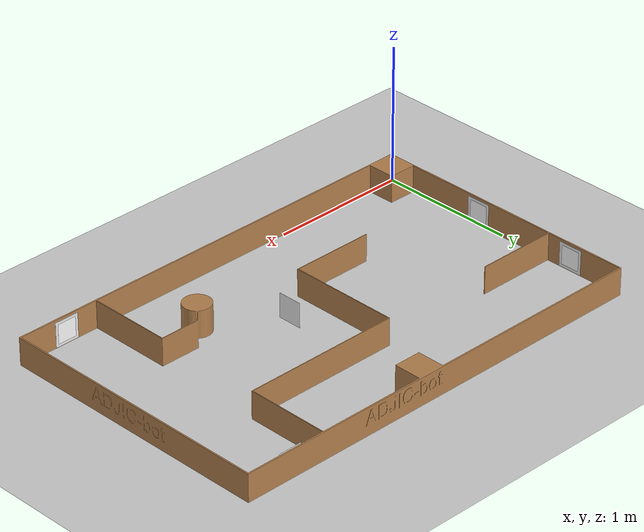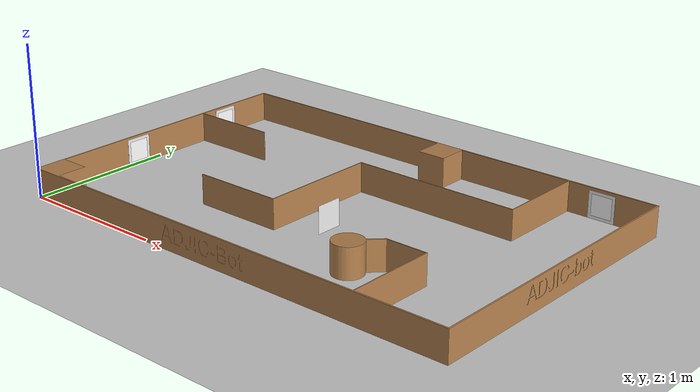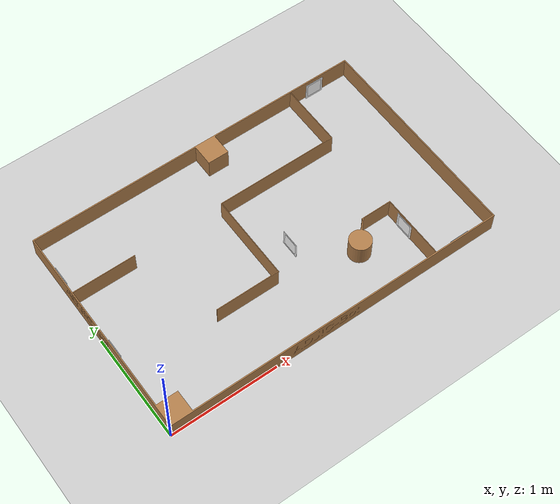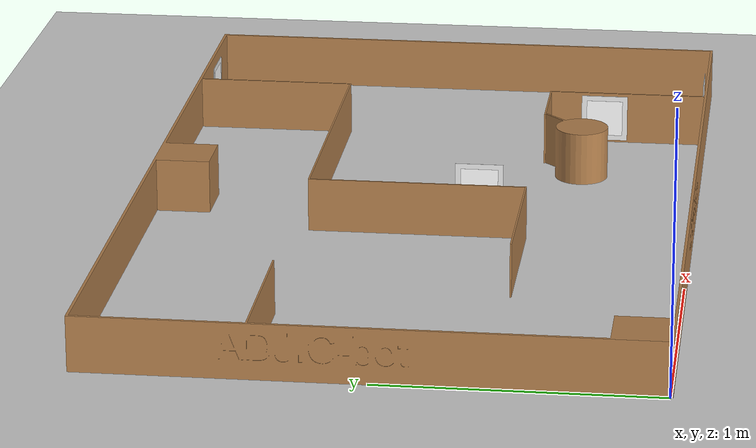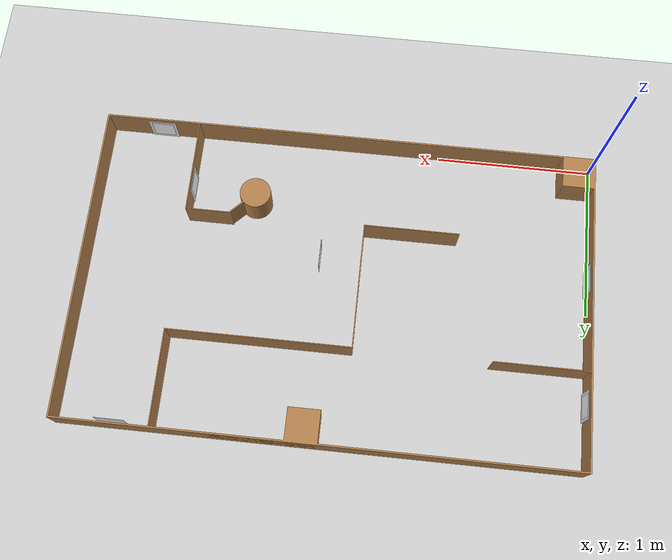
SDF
<sdf version="1.7">
 <world name="default">
  <light name="sun" type="directional">
   <pose>0 0 10 0 -0 0</pose>
   <diffuse>0.8 0.8 0.8 1</diffuse>
   <specular>0.2 0.2 0.2 1</specular>
   <attenuation>
    <range>1000</range>
    <constant>0.9</constant>
    <linear>0.01</linear>
    <quadratic>0.001</quadratic>
   </attenuation>
   <direction>-0.5 0.1 -0.9</direction>
   <spot><inner_angle>0</inner_angle><outer_angle>0</outer_angle><falloff>0</falloff></spot>
  </light>
  <model name="ground_plane">
   <static>1</static>
   <link name="link">
    <collision name="collision">
     <geometry><plane><normal>0 0 1</normal><size>100 100</size></plane></geometry>
     <surface>
      <contact><collide_bitmask>65535</collide_bitmask></contact>
      <friction><ode><mu>100</mu><mu2>50</mu2></ode></friction>
     </surface>
    </collision>
    <visual name="visual">
     <cast_shadows>0</cast_shadows>
     <geometry><plane><normal>0 0 1</normal><size>100 100</size></plane></geometry>
     <material>
      <script><uri>file://media/materials/scripts/gazebo.material</uri><name>Gazebo/Grey</name></script>
     </material>
    </visual>
   </link>
  </model>
  <gravity>0 0 -9.8</gravity>
  <magnetic_field>6e-06 2.3e-05 -4.2e-05</magnetic_field>
  <atmosphere type="adiabatic"/>
  <physics type="ode">
   <max_step_size>0.001</max_step_size>
   <real_time_factor>1</real_time_factor>
   <real_time_update_rate>1000</real_time_update_rate>
  </physics>
  <scene><ambient>0.4 0.4 0.4 1</ambient><background>0.7 0.7 0.7 1</background><shadows>1</shadows></scene>
  <include><uri>model://aruco_marker_0</uri><pose>0.02 0.8 0.1 0 0 0</pose></include>
  <include><uri>model://aruco_marker_1</uri><pose>0.02 1.6 0.1 0 0 0</pose></include>
  <include><uri>model://aruco_marker_2</uri><pose>1.716 0.8 0.1 0 0 3.14159</pose></include>
  <include><uri>model://aruco_marker_3</uri><pose>2.586 0.39 0.1 0 0 3.14159</pose></include>
  <include><uri>model://aruco_marker_4</uri><pose>2.85 0.01 0.1 0 0 1.5708</pose></include>
  <include><uri>model://aruco_marker_5</uri><pose>2.85 1.98 0.1 0 0 -1.5708</pose></include>
  <spherical_coordinates>
   <surface_model>EARTH_WGS84</surface_model>
   <latitude_deg>0</latitude_deg>
   <longitude_deg>0</longitude_deg>
   <elevation>0</elevation>
   <heading_deg>0</heading_deg>
  </spherical_coordinates>
  <model name="simulation_map">
   <static>1</static>
   <pose>0 2.0 0 0 -0 0</pose>
   <link name="walls">
    <collision name="collision">
     <geometry><mesh><uri>model://challenge6/meshes/Mapa_pista_ADJIC v4.dae</uri></mesh></geometry>
     <surface><friction><ode><mu>0.6</mu><mu2>0.6</mu2></ode></friction></surface>
    </collision>
    <visual name="visual">
     <geometry><mesh><uri>model://challenge6/meshes/Mapa_pista_ADJIC v4.dae</uri></mesh></geometry>
     <material>
      <script><uri>file://media/materials/scripts/gazebo.material</uri><name>Gazebo/Wood</name></script>
     </material>
     <cast_shadows>0</cast_shadows>
    </visual>
   </link>
  </model>
 </world>
</sdf>

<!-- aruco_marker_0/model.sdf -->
<sdf version="1.5">
    <model name='aruco_marker_1'>
    <pose>0 0 0 0 0 0</pose>
    <static>true</static>
        <link name='link'>
            <inertial>
                <pose>0 0 0 0 -0 0</pose>
                <mass>0.281</mass>
                <inertia>
                    <ixx>0.0006167</ixx>
                    <ixy>0</ixy>
                    <ixz>0</ixz>
                    <iyy>0.0006167</iyy>
                    <iyz>0</iyz>
                    <izz>0.0006167</izz>
                </inertia>
            </inertial>
            <collision name="collision">
                <geometry>
                    <box>
                        <size>0.001 0.18 0.18</size>
                    </box>
                </geometry>
                <surface>
                    <contact>
                        <ode>
                            <max_vel>1</max_vel>
                            <min_depth>0.001</min_depth>
                            <kp>1000000</kp>
                            <kd>10</kd>
                        </ode>
                    </contact>
                    <friction>
                        <ode>
                            <mu>1</mu>
                            <mu2>1</mu2>
                        </ode>
                    </friction>
                </surface>
            </collision>

            <visual name='box_visual'>
                <cast_shadows>0</cast_shadows>
                    <geometry>
                        <box>
                            <size>0.001 0.18 0.18</size>
                        </box>
                    </geometry>
                    <material>
                    <script>
                        <uri>file://media/materials/scripts/gazebo.material</uri>
                        <name>Gazebo/White</name>
                    </script>
                    <ambient>1 1 1 1</ambient>
                    <diffuse>1 1 1 1</diffuse>
                    <specular>0 0 0 1</specular>
                    <emissive>0 0 0 1</emissive>
                </material>
            </visual>

            <visual name='aruco_visual1'>
                <cast_shadows>0</cast_shadows>
                <pose>0.00065 0.0 0.0 1.5708 0.0 1.5708</pose>
                <geometry>
                    <plane>
                        <normal>0 0 1</normal>
                        <size>0.14 0.14</size>
                    </plane>
                </geometry>
                <material>
                    <script>
                        <uri>file://media/materials/scripts/mcr2_materials.material</uri>
                        <name>mcr2_materials/aruco_marker0</name>
                    </script>
                    <ambient>1 1 1 1</ambient>
                    <diffuse>1 1 1 1</diffuse>
                    <specular>0 0 0 1</specular>
                    <emissive>0 0 0 1</emissive>
                </material>
            </visual>

        </link>
    </model>
</sdf>

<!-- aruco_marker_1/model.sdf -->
<sdf version="1.5">

    <model name='aruco_marker_2'>
        <pose>0 0 0 0 0 0</pose>
        <static>true</static>
        <link name='link'>
            <inertial>
                <pose>0 0 0 0 -0 0</pose>
                <mass>0.281</mass>
                <inertia>
                    <ixx>0.0006167</ixx>
                    <ixy>0</ixy>
                    <ixz>0</ixz>
                    <iyy>0.0006167</iyy>
                    <iyz>0</iyz>
                    <izz>0.0006167</izz>
                </inertia>
            </inertial>
            <collision name="collision">
                <geometry>
                    <box>
                        <size>0.001 0.18 0.18</size>
                    </box>
                </geometry>
                <surface>
                    <contact>
                        <ode>
                            <max_vel>1</max_vel>
                            <min_depth>0.001</min_depth>
                            <kp>1000000</kp>
                            <kd>10</kd>
                        </ode>
                    </contact>
                    <friction>
                        <ode>
                            <mu>1</mu>
                            <mu2>1</mu2>
                        </ode>
                    </friction>
                </surface>
            </collision>

            <visual name='box_visual'>
                <cast_shadows>0</cast_shadows>
                    <geometry>
                        <box>
                            <size>0.001 0.18 0.18</size>
                        </box>
                    </geometry>
                    <material>
                    <script>
                        <uri>file://media/materials/scripts/gazebo.material</uri>
                        <name>Gazebo/White</name>
                    </script>
                    <ambient>1 1 1 1</ambient>
                    <diffuse>1 1 1 1</diffuse>
                    <specular>0 0 0 1</specular>
                    <emissive>0 0 0 1</emissive>
                </material>
            </visual>

            <visual name='aruco_visual1'>
                <cast_shadows>0</cast_shadows>
                <pose>0.00065 0.0 0.0 1.5708 0.0 1.5708</pose>
                <geometry>
                    <plane>
                        <normal>0 0 1</normal>
                        <size>0.14 0.14</size>
                    </plane>
                </geometry>
                <material>
                    <script>
                        <uri>file://media/materials/scripts/mcr2_materials.material</uri>
                        <name>mcr2_materials/aruco_marker1</name>
                    </script>
                    <ambient>1 1 1 1</ambient>
                    <diffuse>1 1 1 1</diffuse>
                    <specular>0 0 0 1</specular>
                    <emissive>0 0 0 1</emissive>
                </material>
            </visual>

        </link>
    </model>
</sdf>

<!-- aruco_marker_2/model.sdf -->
<sdf version="1.5">

    <model name='aruco_marker_3'>
        <pose>0 0 0 0 0 0</pose>
        <static>true</static>
        <link name='link'>
            <inertial>
                <pose>0 0 0 0 -0 0</pose>
                <mass>0.281</mass>
                <inertia>
                    <ixx>0.0006167</ixx>
                    <ixy>0</ixy>
                    <ixz>0</ixz>
                    <iyy>0.0006167</iyy>
                    <iyz>0</iyz>
                    <izz>0.0006167</izz>
                </inertia>
            </inertial>
            <collision name="collision">
                <geometry>
                    <box>
                        <size>0.001 0.18 0.18</size>
                    </box>
                </geometry>
                <surface>
                    <contact>
                        <ode>
                            <max_vel>1</max_vel>
                            <min_depth>0.001</min_depth>
                            <kp>1000000</kp>
                            <kd>10</kd>
                        </ode>
                    </contact>
                    <friction>
                        <ode>
                            <mu>1</mu>
                            <mu2>1</mu2>
                        </ode>
                    </friction>
                </surface>
            </collision>

            <visual name='box_visual'>
                <cast_shadows>0</cast_shadows>
                    <geometry>
                        <box>
                            <size>0.001 0.18 0.18</size>
                        </box>
                    </geometry>
                    <material>
                    <script>
                        <uri>file://media/materials/scripts/gazebo.material</uri>
                        <name>Gazebo/White</name>
                    </script>
                    <ambient>1 1 1 1</ambient>
                    <diffuse>1 1 1 1</diffuse>
                    <specular>0 0 0 1</specular>
                    <emissive>0 0 0 1</emissive>
                </material>
            </visual>

            <visual name='aruco_visual1'>
                <cast_shadows>0</cast_shadows>
                <pose>0.00065 0.0 0.0 1.5708 0.0 1.5708</pose>
                <geometry>
                    <plane>
                        <normal>0 0 1</normal>
                        <size>0.14 0.14</size>
                    </plane>
                </geometry>
                <material>
                    <script>
                        <uri>file://media/materials/scripts/mcr2_materials.material</uri>
                        <name>mcr2_materials/aruco_marker2</name>
                    </script>
                    <ambient>1 1 1 1</ambient>
                    <diffuse>1 1 1 1</diffuse>
                    <specular>0 0 0 1</specular>
                    <emissive>0 0 0 1</emissive>
                </material>
            </visual>

        </link>
    </model>
</sdf>

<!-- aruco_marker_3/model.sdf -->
<sdf version="1.5">

    <model name='aruco_marker_4'>
        <pose>0 0 0 0 0 0</pose>
        <static>true</static>
        <link name='link'>
            <inertial>
                <pose>0 0 0 0 -0 0</pose>
                <mass>0.281</mass>
                <inertia>
                    <ixx>0.0006167</ixx>
                    <ixy>0</ixy>
                    <ixz>0</ixz>
                    <iyy>0.0006167</iyy>
                    <iyz>0</iyz>
                    <izz>0.0006167</izz>
                </inertia>
            </inertial>
            <collision name="collision">
                <geometry>
                    <box>
                        <size>0.001 0.18 0.18</size>
                    </box>
                </geometry>
                <surface>
                    <contact>
                        <ode>
                            <max_vel>1</max_vel>
                            <min_depth>0.001</min_depth>
                            <kp>1000000</kp>
                            <kd>10</kd>
                        </ode>
                    </contact>
                    <friction>
                        <ode>
                            <mu>1</mu>
                            <mu2>1</mu2>
                        </ode>
                    </friction>
                </surface>
            </collision>

            <visual name='box_visual'>
                <cast_shadows>0</cast_shadows>
                    <geometry>
                        <box>
                            <size>0.001 0.18 0.18</size>
                        </box>
                    </geometry>
                    <material>
                    <script>
                        <uri>file://media/materials/scripts/gazebo.material</uri>
                        <name>Gazebo/White</name>
                    </script>
                    <ambient>1 1 1 1</ambient>
                    <diffuse>1 1 1 1</diffuse>
                    <specular>0 0 0 1</specular>
                    <emissive>0 0 0 1</emissive>
                </material>
            </visual>

            <visual name='aruco_visual1'>
                <cast_shadows>0</cast_shadows>
                <pose>0.00065 0.0 0.0 1.5708 0.0 1.5708</pose>
                <geometry>
                    <plane>
                        <normal>0 0 1</normal>
                        <size>0.14 0.14</size>
                    </plane>
                </geometry>
                <material>
                    <script>
                        <uri>file://media/materials/scripts/mcr2_materials.material</uri>
                        <name>mcr2_materials/aruco_marker3</name>
                    </script>
                    <ambient>1 1 1 1</ambient>
                    <diffuse>1 1 1 1</diffuse>
                    <specular>0 0 0 1</specular>
                    <emissive>0 0 0 1</emissive>
                </material>
            </visual>

        </link>
    </model>
</sdf>

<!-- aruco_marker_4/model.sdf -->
<sdf version="1.5">

    <model name='aruco_marker_5'>
        <pose>0 0 0 0 0 0</pose>
        <static>true</static>
        <link name='link'>
            <inertial>
                <pose>0 0 0 0 -0 0</pose>
                <mass>0.281</mass>
                <inertia>
                    <ixx>0.0006167</ixx>
                    <ixy>0</ixy>
                    <ixz>0</ixz>
                    <iyy>0.0006167</iyy>
                    <iyz>0</iyz>
                    <izz>0.0006167</izz>
                </inertia>
            </inertial>
            <collision name="collision">
                <geometry>
                    <box>
                        <size>0.001 0.18 0.18</size>
                    </box>
                </geometry>
                <surface>
                    <contact>
                        <ode>
                            <max_vel>1</max_vel>
                            <min_depth>0.001</min_depth>
                            <kp>1000000</kp>
                            <kd>10</kd>
                        </ode>
                    </contact>
                    <friction>
                        <ode>
                            <mu>1</mu>
                            <mu2>1</mu2>
                        </ode>
                    </friction>
                </surface>
            </collision>

            <visual name='box_visual'>
                <cast_shadows>0</cast_shadows>
                    <geometry>
                        <box>
                            <size>0.001 0.18 0.18</size>
                        </box>
                    </geometry>
                    <material>
                    <script>
                        <uri>file://media/materials/scripts/gazebo.material</uri>
                        <name>Gazebo/White</name>
                    </script>
                    <ambient>1 1 1 1</ambient>
                    <diffuse>1 1 1 1</diffuse>
                    <specular>0 0 0 1</specular>
                    <emissive>0 0 0 1</emissive>
                </material>
            </visual>

            <visual name='aruco_visual1'>
                <cast_shadows>0</cast_shadows>
                <pose>0.00065 0.0 0.0 1.5708 0.0 1.5708</pose>
                <geometry>
                    <plane>
                        <normal>0 0 1</normal>
                        <size>0.14 0.14</size>
                    </plane>
                </geometry>
                <material>
                    <script>
                        <uri>file://media/materials/scripts/mcr2_materials.material</uri>
                        <name>mcr2_materials/aruco_marker4</name>
                    </script>
                    <ambient>1 1 1 1</ambient>
                    <diffuse>1 1 1 1</diffuse>
                    <specular>0 0 0 1</specular>
                    <emissive>0 0 0 1</emissive>
                </material>
            </visual>

        </link>
    </model>
</sdf>

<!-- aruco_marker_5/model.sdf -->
<sdf version="1.5">

    <model name='aruco_marker_6'>
        <pose>0 0 0 0 0 0</pose>
        <static>true</static>
        <link name='link'>
            <inertial>
                <pose>0 0 0 0 -0 0</pose>
                <mass>0.281</mass>
                <inertia>
                    <ixx>0.0006167</ixx>
                    <ixy>0</ixy>
                    <ixz>0</ixz>
                    <iyy>0.0006167</iyy>
                    <iyz>0</iyz>
                    <izz>0.0006167</izz>
                </inertia>
            </inertial>
            <collision name="collision">
                <geometry>
                    <box>
                        <size>0.001 0.18 0.18</size>
                    </box>
                </geometry>
                <surface>
                    <contact>
                        <ode>
                            <max_vel>1</max_vel>
                            <min_depth>0.001</min_depth>
                            <kp>1000000</kp>
                            <kd>10</kd>
                        </ode>
                    </contact>
                    <friction>
                        <ode>
                            <mu>1</mu>
                            <mu2>1</mu2>
                        </ode>
                    </friction>
                </surface>
            </collision>

            <visual name='box_visual'>
                <cast_shadows>0</cast_shadows>
                    <geometry>
                        <box>
                            <size>0.001 0.18 0.18</size>
                        </box>
                    </geometry>
                    <material>
                    <script>
                        <uri>file://media/materials/scripts/gazebo.material</uri>
                        <name>Gazebo/White</name>
                    </script>
                    <ambient>1 1 1 1</ambient>
                    <diffuse>1 1 1 1</diffuse>
                    <specular>0 0 0 1</specular>
                    <emissive>0 0 0 1</emissive>
                </material>
            </visual>

            <visual name='aruco_visual1'>
                <cast_shadows>0</cast_shadows>
                <pose>0.00065 0.0 0.0 1.5708 0.0 1.5708</pose>
                <geometry>
                    <plane>
                        <normal>0 0 1</normal>
                        <size>0.14 0.14</size>
                    </plane>
                </geometry>
                <material>
                    <script>
                        <uri>file://media/materials/scripts/mcr2_materials.material</uri>
                        <name>mcr2_materials/aruco_marker5</name>
                    </script>
                    <ambient>1 1 1 1</ambient>
                    <diffuse>1 1 1 1</diffuse>
                    <specular>0 0 0 1</specular>
                    <emissive>0 0 0 1</emissive>
                </material>
            </visual>

        </link>
    </model>
</sdf>
